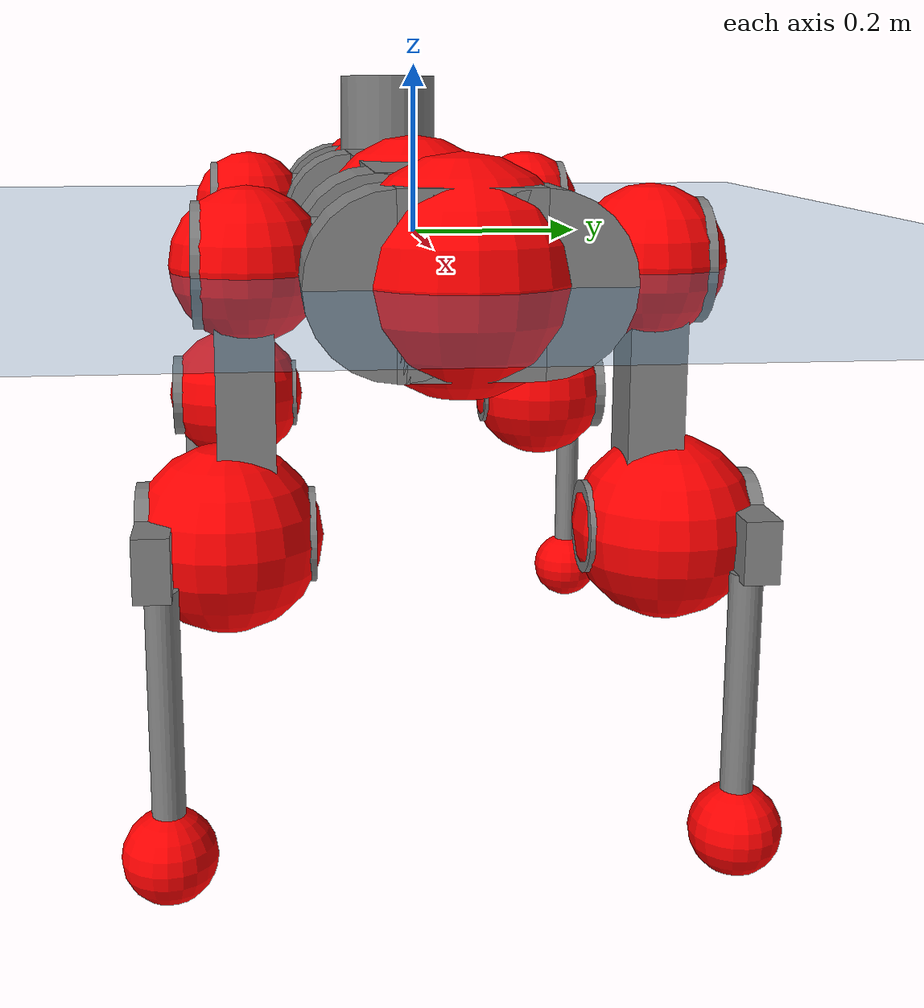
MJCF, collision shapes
<mujoco model="anymal_c">
  <compiler angle="radian" assetdir="assets" balanceinertia="true" inertiafromgeom="false"/>

  <option timestep="0.005" density="1.2" viscosity="2e-05"/>

  <size nkey="1"/>

  <visual>
    <quality shadowsize="8192"/>
    <map shadowclip="0.5"/>
  </visual>

  <default>
    <default class="/">
      <material specular="0" shininess="0.25"/>
      <geom contype="0" conaffinity="0" group="1" solref="-1000 -80"/>
      <site size="0.01 0.005 0.005" group="5"/>
      <general forcelimited="true" forcerange="-80 80" biastype="affine" gainprm="80" biasprm="0 -80 -2"/>
      <default class="anymal_c">
        <joint armature="0.01" damping="0.01" frictionloss="0.1"/>
        <default class="visual">
          <geom type="mesh" group="2"/>
          <default class="visual_zflip"/>
        </default>
        <default class="collision">
          <geom type="cylinder" group="3"/>
          <default class="foot">
            <geom size="0.03 0 0" type="sphere" condim="6" priority="1" friction="0.8 0.02 0.01" solimp="0.015 1 0.03"/>
          </default>
        </default>
      </default>
      <default class="reward_collision_sphere">
        <geom group="5" rgba="1 0 0 1"/>
      </default>
    </default>
  </default>

  <asset>
    <texture type="skybox" colorspace="auto" name="//unnamed_texture_0" builtin="gradient" rgb1="0.95 0.95 0.95" rgb2="0.95 0.95 0.95" width="100" height="600"/>
    <texture type="2d" colorspace="auto" name="texplane" builtin="checker" rgb1="0.345 0.575 0.748" rgb2="0.345 0.575 0.748" markrgb="1 1 1" width="512" height="512"/>
    <texture type="2d" colorspace="linear" name="base" file="base.png"/>
    <texture type="2d" colorspace="linear" name="top_shell" file="top_shell.png"/>
    <texture type="2d" colorspace="linear" name="bottom_shell" file="bottom_shell.png"/>
    <texture type="2d" colorspace="linear" name="remote" file="remote.png"/>
    <texture type="2d" colorspace="linear" name="hatch" file="hatch.png"/>
    <texture type="2d" colorspace="linear" name="handle" file="handle.png"/>
    <texture type="2d" colorspace="linear" name="face" file="face.png"/>
    <texture type="2d" colorspace="linear" name="battery" file="battery.png"/>
    <texture type="2d" colorspace="linear" name="lidar_cage" file="lidar_cage.png"/>
    <texture type="2d" colorspace="linear" name="depth_camera" file="depth_camera.png"/>
    <texture type="2d" colorspace="linear" name="wide_angle_camera" file="wide_angle_camera.png"/>
    <texture type="2d" colorspace="linear" name="lidar" file="lidar.png"/>
    <texture type="2d" colorspace="linear" name="drive" file="drive.png"/>
    <texture type="2d" colorspace="linear" name="hip_l" file="hip_l.png"/>
    <texture type="2d" colorspace="linear" name="shank_l" file="shank_l.png"/>
    <texture type="2d" colorspace="linear" name="foot" file="foot.png"/>
    <texture type="2d" colorspace="linear" name="thigh" file="thigh.png"/>
    <texture type="2d" colorspace="linear" name="shank_r" file="shank_r.png"/>
    <texture type="2d" colorspace="linear" name="hip_r" file="hip_r.png"/>
    <material name="MatPlane" class="/" texture="texplane" texuniform="true" texrepeat="2 2" specular="0.9" shininess="0.5"/>
    <material name="black_plastic" class="/" rgba="0.007 0.007 0.007 1"/>
    <material name="green" class="/" rgba="0.052 0.178 0.033 1"/>
    <material name="red" class="/" rgba="0.178 0.006 0.005 1"/>
    <material name="yellow" class="/" rgba="0.178 0.119 0.006 1"/>
    <material name="lwl" class="/" rgba="0.8 0.8 0.8 1"/>
    <material name="base" class="/" texture="base"/>
    <material name="top_shell" class="/" texture="top_shell"/>
    <material name="bottom_shell" class="/" texture="bottom_shell"/>
    <material name="hip_l" class="/" texture="hip_l"/>
    <material name="thigh" class="/" texture="thigh"/>
    <material name="shank_l" class="/" texture="shank_l"/>
    <material name="foot" class="/" texture="foot"/>
    <material name="hip_r" class="/" texture="hip_r"/>
    <material name="shank" class="/" texture="shank_r"/>
    <material name="hatch" class="/" texture="hatch"/>
    <material name="remote" class="/" texture="remote"/>
    <material name="handle" class="/" texture="handle"/>
    <material name="face" class="/" texture="face"/>
    <material name="depth_camera" class="/" texture="depth_camera"/>
    <material name="wide_angle_camera" class="/" texture="wide_angle_camera"/>
    <material name="battery" class="/" texture="battery"/>
    <material name="lidar_cage" class="/" texture="lidar_cage"/>
    <material name="lidar" class="/" texture="lidar"/>
    <material name="drive" class="/" texture="drive"/>
    <mesh name="base_0" class="/" file="base_0.obj"/>
    <mesh name="base_1" class="/" file="base_1.obj"/>
    <mesh name="base_2" class="/" file="base_2.obj"/>
    <mesh name="base_3" class="/" file="base_3.obj"/>
    <mesh name="base_4" class="/" file="base_4.obj"/>
    <mesh name="base_5" class="/" file="base_5.obj"/>
    <mesh name="top_shell" class="/" file="top_shell.obj"/>
    <mesh name="bottom_shell" class="/" file="bottom_shell.obj"/>
    <mesh name="remote" class="/" file="remote.obj"/>
    <mesh name="handle" class="/" file="handle.obj"/>
    <mesh name="face" class="/" file="face.obj"/>
    <mesh name="wide_angle_camera" class="/" file="wide_angle_camera.obj"/>
    <mesh name="depth_camera" class="/" file="depth_camera.obj"/>
    <mesh name="battery" class="/" file="battery.obj"/>
    <mesh name="lidar_cage" class="/" file="lidar_cage.obj"/>
    <mesh name="lidar" class="/" file="lidar.obj"/>
    <mesh name="drive" class="/" file="drive.obj"/>
    <mesh name="hip_l" class="/" file="hip_l.obj"/>
    <mesh name="thigh" class="/" file="thigh.obj"/>
    <mesh name="shank_l" class="/" file="shank_l.obj"/>
    <mesh name="foot" class="/" file="foot.obj"/>
    <mesh name="hip_r" class="/" file="hip_r.obj"/>
    <mesh name="hatch" class="/" file="hatch.obj"/>
    <mesh name="shank_r" class="/" file="shank_r.obj"/>
  </asset>

  <worldbody>
    <geom name="floor" class="/" size="100 100 0.125" type="plane" group="0" material="MatPlane"/>
    <light name="toplight_shadow" class="/" pos="0 0 5" dir="0.0990148 0.0990148 -0.990148" type="directional" ambient="0.04 0.04 0.04" diffuse="0.55 0.55 0.55" specular="0.12 0.12 0.12"/>
    <light name="toplight_fill" class="/" pos="0 0 5" dir="0.0990148 0.0990148 -0.990148" type="directional" castshadow="false" ambient="0.04 0.04 0.04" diffuse="0.3 0.3 0.3" specular="0.08 0.08 0.08"/>
    <body name="trunk" childclass="anymal_c" pos="-7.09151e-05 -6.06108e-05 0.000513237" quat="1 -0.000100759 5.86016e-05 8.78511e-05">
      <inertial pos="0.00216075 0.000875074 0.0472227" quat="0.500248 0.499806 0.499952 0.499994" mass="17.8173" diaginertia="0.690007 0.433182 0.191863"/>
      <joint name="//unnamed_joint_0" type="free" armature="0" damping="0" frictionloss="0"/>
      <geom name="//unnamed_geom_1" class="visual" material="green" mesh="base_0"/>
      <geom name="//unnamed_geom_2" class="visual" material="yellow" mesh="base_1"/>
      <geom name="//unnamed_geom_3" class="visual" material="red" mesh="base_2"/>
      <geom name="//unnamed_geom_4" class="visual" material="black_plastic" mesh="base_3"/>
      <geom name="//unnamed_geom_5" class="visual" material="lwl" mesh="base_4"/>
      <geom name="//unnamed_geom_6" class="visual" material="base" mesh="base_5"/>
      <geom name="trunk_1" class="collision" size="0.281582 0.0679681 0.0873875" type="box"/>
      <geom name="trunk_2" class="collision" size="0.0873875 0.0703955" pos="0.220179 0.0649517 0" quat="0.707107 0 0.707107 0"/>
      <geom name="trunk_3" class="collision" size="0.0873875 0.0703955" pos="-0.220179 0.0649517 0" quat="0.707107 0 0.707107 0"/>
      <geom name="trunk_4" class="collision" size="0.0873875 0.0703955" pos="0.220179 -0.0649517 0" quat="0.707107 0 0.707107 0"/>
      <geom name="trunk_5" class="collision" size="0.0873875 0.0703955" pos="-0.220179 -0.0649517 0" quat="0.707107 0 0.707107 0"/>
      <geom name="//unnamed_geom_12" class="visual" material="top_shell" mesh="top_shell"/>
      <geom name="//unnamed_geom_13" class="visual" material="bottom_shell" mesh="bottom_shell"/>
      <geom name="//unnamed_geom_14" class="visual" material="remote" mesh="remote"/>
      <geom name="//unnamed_geom_15" class="visual" material="handle" mesh="handle"/>
      <geom name="//unnamed_geom_16" class="visual" pos="0.419606 0 0" quat="1 0 0 0" material="face" mesh="face"/>
      <geom name="trunk_6" class="collision" size="0.0534035 0.0679681 0.0873875" pos="0.475283 0 0" type="box"/>
      <geom name="//unnamed_geom_18" class="collision" size="0.0873875 0.0534035" pos="0.475283 0.0649517 0" quat="0.707107 0 0.707107 0"/>
      <geom name="//unnamed_geom_19" class="collision" size="0.0873875 0.0534035" pos="0.475283 -0.0649517 0" quat="0.707107 0 0.707107 0"/>
      <geom name="//unnamed_geom_20" class="visual" pos="0.467335 0 -0.0281024" quat="0.965926 0 0.258819 0" material="depth_camera" mesh="depth_camera"/>
      <geom name="//unnamed_geom_21" class="visual" pos="0.519319 0 0.0145616" material="wide_angle_camera" mesh="wide_angle_camera"/>
      <geom name="//unnamed_geom_22" class="visual_zflip" pos="-0.419606 0 0" quat="0 0 0 1" material="face" mesh="face"/>
      <geom name="trunk_7" class="collision" size="0.0534035 0.0679681 0.0873875" pos="-0.475283 0 0" quat="0 0 0 1" type="box"/>
      <geom name="//unnamed_geom_24" class="collision" size="0.0873875 0.0534035" pos="-0.475283 -0.0649517 0" quat="0 -0.707107 0 0.707107"/>
      <geom name="//unnamed_geom_25" class="collision" size="0.0873875 0.0534035" pos="-0.475283 0.0649517 0" quat="0 -0.707107 0 0.707107"/>
      <geom name="//unnamed_geom_26" class="visual" pos="-0.467335 0 -0.0281024" quat="0 -0.258819 0 0.965926" material="depth_camera" mesh="depth_camera"/>
      <geom name="//unnamed_geom_27" class="visual_zflip" pos="-0.519319 0 0.0145616" quat="0 0 0 1" material="wide_angle_camera" mesh="wide_angle_camera"/>
      <geom name="//unnamed_geom_28" class="visual" material="battery" mesh="battery"/>
      <geom name="//unnamed_geom_29" class="visual" pos="0 0.0698361 0.0285584" quat="0.683013 -0.183013 0.183013 0.683013" material="depth_camera" mesh="depth_camera"/>
      <geom name="//unnamed_geom_30" class="visual" pos="0 -0.0698361 0.0285584" quat="0.683013 0.183013 0.183013 -0.683013" material="depth_camera" mesh="depth_camera"/>
      <geom name="//unnamed_geom_31" class="visual" pos="-0.368484 0 0.0714948" quat="1 0 0 0" material="lidar_cage" mesh="lidar_cage"/>
      <geom name="trunk_8" class="collision" size="0.0679681 0.0582583" pos="-0.368484 0 0.129858"/>
      <geom name="//unnamed_geom_33" class="visual" pos="-0.368484 -3.31732e-05 0.138321" quat="0.707107 0 0 -0.707107" material="lidar" mesh="lidar"/>
      <geom name="//unnamed_geom_34" class="visual" pos="0.303594 0.0965155 -7.73451e-10" quat="0.258819 0.965926 0 0" material="drive" mesh="drive"/>
      <geom name="//unnamed_geom_35" class="visual" pos="0.303594 -0.0965155 7.73451e-10" quat="0.258819 -0.965926 0 0" material="drive" mesh="drive"/>
      <geom name="//unnamed_geom_36" class="visual" pos="-0.303594 0.0965155 7.73451e-10" quat="0 0 0.965926 -0.258819" material="drive" mesh="drive"/>
      <geom name="//unnamed_geom_37" class="visual" pos="-0.303594 -0.0965155 -7.73451e-10" quat="0 0 -0.965926 -0.258819" material="drive" mesh="drive"/>
      <geom name="//unnamed_geom_38" class="visual" pos="0.117429 0 0.0710084" quat="1 0 0 0" material="hatch" mesh="hatch"/>
      <geom name="//unnamed_geom_39" class="reward_collision_sphere" size="0.116517"/>
      <geom name="//unnamed_geom_40" class="reward_collision_sphere" size="0.116517" pos="0.455543 0 0"/>
      <geom name="//unnamed_geom_41" class="reward_collision_sphere" size="0.116517" pos="-0.455543 0 0"/>
      <site name="imu" pos="0.249566 0.0125116 0.0419677" size="0.00970972"/>
      <camera name="track" pos="0 -1.85576 0" quat="0.707107 0.707107 0 0" mode="trackcom"/>
      <camera name="ego_camera" pos="0.455543 0 -0.0389087" quat="-0.5 -0.5 0.5 0.5"/>
      <body name="LF_HIP" pos="0.304087 0.0972392 0.000775061" quat="0.258894 0.965906 3.11615e-05 6.64536e-06">
        <inertial pos="0.0570851 -0.0137306 -0.00695675" quat="-0.127362 0.711054 -0.133429 0.678512" mass="2.54685" diaginertia="0.00624137 0.00342877 0.00283659"/>
        <joint name="LF_HAA" pos="0 0 0" axis="0.999998 -0.000383267 0.00194749" range="-0.703001 0.488189" armature="0.00930613" damping="0.005208" frictionloss="0.0962549"/>
        <geom name="//unnamed_geom_42" class="visual" pos="0 -4.54986e-05 7.47311e-06" quat="0.258819 -0.965926 0 0" material="hip_l" mesh="hip_l"/>
        <geom name="//unnamed_geom_43" class="visual" pos="0.0606379 -0.0723799 -0.0421202" quat="0.183013 -0.683013 0.683013 0.183013" material="drive" mesh="drive"/>
        <geom name="//unnamed_geom_44" class="collision" size="0.0485486 0.0679681" pos="0.0606379 -0.0110973 -0.00671662" quat="-0.353553 -0.612372 0.612372 -0.353553"/>
        <body name="LF_THIGH" pos="0.0608492 -0.0673898 -0.0414578" quat="0.183017 -0.68294 0.683052 0.183134">
          <inertial pos="0.0315826 -8.83913e-05 -0.237974" quat="0.99322 -0.00650305 -0.0807844 0.0833392" mass="2.79707" diaginertia="0.0322969 0.0203742 0.00355827"/>
          <joint name="LF_HFE" pos="0 0 0" axis="0.999999 -0.00158384 -0.000464857" stiffness="0.00694305" range="-3.13054 3.12149" armature="0.00984255" damping="0.0079071" frictionloss="0.0980969"/>
          <geom name="//unnamed_geom_45" class="visual" pos="0.00167997 2.64724e-06 0" quat="0.707107 0 0 -0.707107" material="thigh" mesh="thigh"/>
          <geom name="//unnamed_geom_46" class="collision" size="0.0631132 0.0388389" pos="0.0404927 0 0" quat="0.5 0.5 -0.5 -0.5"/>
          <geom name="//unnamed_geom_47" class="collision" size="0.0364115 0.0291292 0.137212" pos="0.0303695 0 -0.137459" quat="0.707107 0 0 -0.707107" type="box"/>
          <geom name="//unnamed_geom_48" class="visual" pos="0.101536 0 -0.277225" quat="1 0 0 0" material="drive" mesh="drive"/>
          <geom name="//unnamed_geom_49" class="collision" size="0.0485486 0.0679681" pos="0.0306732 0 -0.277225" quat="0.707107 0 0.707107 0"/>
          <geom name="//unnamed_geom_50" class="reward_collision_sphere" size="0.0776778" pos="0.025308 0 0"/>
          <body name="LF_SHANK" pos="0.101802 -0.00105707 -0.277929" quat="1 -3.42759e-05 -0.000467368 -0.000137024">
            <inertial pos="0.00565961 -0.056864 -0.0783794" quat="0.992889 -0.11632 -0.000994923 -0.0253188" mass="0.544774" diaginertia="0.0108187 0.00630857 0.000977333"/>
            <joint name="LF_KFE" pos="0 0 0" axis="0.999988 -0.00461397 -0.00136441" stiffness="0.000295128" range="-3.13223 3.12898" armature="0.00997837" damping="0.00914434" frictionloss="0.0995126"/>
            <geom name="//unnamed_geom_51" class="visual" pos="0.000547803 0.00292091 0" quat="0.707107 0 0 -0.707107" material="shank_l" mesh="shank_l"/>
            <geom name="LF_kfe_act" class="collision" size="0.0582583 0.0194194" pos="0.0202464 0 0" quat="0.5 0.5 -0.5 -0.5"/>
            <geom name="//unnamed_geom_53" class="collision" size="0.0558299 0.0327703 0.0184485" pos="0.0202464 -0.0533522 0" quat="0.5 0.5 -0.5 -0.5" type="box"/>
            <geom name="//unnamed_geom_54" class="visual" pos="0.0132106 -0.0806658 -0.32875" quat="0.382683 0 0 -0.92388" material="foot" mesh="foot"/>
            <geom name="LF_calf" class="collision" size="0.016992 0.137152" pos="0.0132108 -0.0816071 -0.164375" quat="0.707107 0 0 -0.707107"/>
            <geom name="LF_foot" class="foot" size="0.0304988" pos="0.0132108 -0.0816071 -0.306863" quat="0.707107 0 0 -0.707107"/>
            <geom name="//unnamed_geom_57" class="reward_collision_sphere" size="0.0970972" pos="-0.0506159 0 0"/>
            <geom name="//unnamed_geom_58" class="reward_collision_sphere" size="0.0485486" pos="0.0132108 -0.0816071 -0.306863"/>
            <site name="LF_foot" class="foot" pos="0.0132108 -0.0816071 -0.306863" quat="0.707107 0 0 -0.707107" size="0.00970972"/>
          </body>
        </body>
      </body>
      <body name="RF_HIP" pos="0.303506 -0.0962222 0.000366477" quat="0.258805 -0.965929 -0.000128239 2.53353e-05">
        <inertial pos="0.0573233 0.0151054 -0.00867427" quat="0.134577 0.679465 0.12853 0.709715" mass="2.51997" diaginertia="0.0061901 0.00339787 0.00286683"/>
        <joint name="RF_HAA" pos="0 0 0" axis="1 -0.000531074 0.000676392" range="-0.497307 0.706548" armature="0.00971326" damping="0.00963003" frictionloss="0.100907"/>
        <geom name="//unnamed_geom_59" class="visual" pos="0 4.54982e-05 7.47309e-06" quat="0.258819 0.965926 0 0" material="hip_r" mesh="hip_r"/>
        <geom name="//unnamed_geom_60" class="visual" pos="0.0606379 0.0723799 -0.0421202" quat="0.183013 0.683013 0.683013 -0.183013" material="drive" mesh="drive"/>
        <geom name="//unnamed_geom_61" class="collision" size="0.0485486 0.0679681" pos="0.0606379 0.0110973 -0.00671662" quat="-0.353553 0.612372 0.612372 0.353553"/>
        <body name="RF_THIGH" pos="0.0623774 0.0665535 -0.0418493" quat="0.183084 0.68313 0.682813 -0.183246">
          <inertial pos="0.0309987 -0.000527913 -0.238724" quat="0.992746 -0.00453973 -0.08089 0.088835" mass="2.89625" diaginertia="0.0324077 0.0211525 0.00373196"/>
          <joint name="RF_HFE" pos="0 0 0" axis="0.999984 -0.00126002 -0.00547882" stiffness="0.00532372" range="-3.11233 3.12304" armature="0.00964473" damping="0.00727228" frictionloss="0.0957258"/>
          <geom name="//unnamed_geom_62" class="visual" pos="0.00167997 2.64724e-06 0" quat="0.707107 0 0 -0.707107" material="thigh" mesh="thigh"/>
          <geom name="//unnamed_geom_63" class="collision" size="0.0631132 0.0388389" pos="0.0404927 0 0" quat="0.5 0.5 0.5 0.5"/>
          <geom name="//unnamed_geom_64" class="collision" size="0.0364115 0.0291292 0.137212" pos="0.0303695 0 -0.137459" quat="0.707107 0 0 0.707107" type="box"/>
          <geom name="//unnamed_geom_65" class="visual" pos="0.101536 0 -0.277225" quat="1 0 0 0" material="drive" mesh="drive"/>
          <geom name="//unnamed_geom_66" class="collision" size="0.0485486 0.0679681" pos="0.0306732 0 -0.277225" quat="0.707107 0 0.707107 0"/>
          <geom name="//unnamed_geom_67" class="reward_collision_sphere" size="0.0776778" pos="0.025308 0 0"/>
          <body name="RF_SHANK" pos="0.102113 0.000286468 -0.277843" quat="1 0.000125028 0.000220152 1.16223e-05">
            <inertial pos="0.00629912 0.0565692 -0.0769335" quat="0.992883 0.116354 -0.00131082 0.0253822" mass="0.528125" diaginertia="0.0106942 0.00637899 0.000978229"/>
            <joint name="RF_KFE" pos="0 0 0" axis="0.999947 0.00289486 -0.00992846" range="-3.1402 3.13296" armature="0.00971126" damping="0.010642" frictionloss="0.0896659"/>
            <geom name="//unnamed_geom_68" class="visual" pos="0.0005478 -0.00292091 0" quat="0.707107 0 0 0.707107" material="shank" mesh="shank_r"/>
            <geom name="RF_kfe_act" class="collision" size="0.0582583 0.0194194" pos="0.0202464 0 0" quat="0.5 0.5 0.5 0.5"/>
            <geom name="//unnamed_geom_70" class="collision" size="0.0558299 0.0327703 0.0184485" pos="0.0202464 0.0533522 0" quat="0.5 0.5 0.5 0.5" type="box"/>
            <geom name="//unnamed_geom_71" class="visual" pos="0.0132109 0.0806658 -0.32875" quat="0.382683 0 0 0.92388" material="foot" mesh="foot"/>
            <geom name="RF_calf" class="collision" size="0.016992 0.137152" pos="0.0132108 0.0816071 -0.164375" quat="0.707107 0 0 0.707107"/>
            <geom name="RF_foot" class="foot" size="0.030036" pos="0.0132108 0.0816071 -0.306863" quat="0.707107 0 0 0.707107"/>
            <geom name="//unnamed_geom_74" class="reward_collision_sphere" size="0.0970972" pos="-0.0506159 0 0"/>
            <geom name="//unnamed_geom_75" class="reward_collision_sphere" size="0.0485486" pos="0.0132108 0.0816071 -0.306863"/>
            <site name="RF_foot" class="foot" pos="0.0132108 0.0816071 -0.306863" quat="0.707107 0 0 0.707107" size="0.00970972"/>
          </body>
        </body>
      </body>
      <body name="LH_HIP" pos="-0.303601 0.0968421 0.000347901" quat="1.02708e-05 -1.05022e-05 0.965905 -0.258899">
        <inertial pos="0.0584396 0.0136532 -0.007601" quat="0.142762 0.676135 0.125671 0.711805" mass="2.49479" diaginertia="0.00619898 0.00335452 0.00289787"/>
        <joint name="LH_HAA" pos="0 0 0" axis="0.999992 -0.00397179 -0.000384042" range="-0.48675 0.740861" armature="0.00965665" damping="0.0126626" frictionloss="0.0924802"/>
        <geom name="//unnamed_geom_76" class="visual" pos="0 4.54982e-05 7.47309e-06" quat="-0.258819 -0.965926 0 0" material="hip_r" mesh="hip_r"/>
        <geom name="//unnamed_geom_77" class="visual" pos="0.0606379 0.0723799 -0.0421202" quat="0.183013 0.683013 0.683013 -0.183013" material="drive" mesh="drive"/>
        <geom name="//unnamed_geom_78" class="collision" size="0.0485486 0.0679681" pos="0.0606379 0.0110973 -0.00671662" quat="-0.353553 0.612372 0.612372 0.353553"/>
        <body name="LH_THIGH" pos="0.0602683 0.0675301 -0.0414257" quat="0.183222 0.683019 0.682893 -0.183227">
          <inertial pos="0.031649 0.00043717 -0.23887" quat="0.992658 -0.00511133 -0.0837009 0.0871715" mass="2.84055" diaginertia="0.0322995 0.021028 0.00363967"/>
          <joint name="LH_HFE" pos="0 0 0" axis="1 -0.000106317 -0.000126861" range="-3.14316 3.1419" armature="0.0096819" damping="0.00552862" frictionloss="0.0976786"/>
          <geom name="//unnamed_geom_79" class="visual" pos="0.00167997 2.64724e-06 0" quat="0.707107 0 0 -0.707107" material="thigh" mesh="thigh"/>
          <geom name="//unnamed_geom_80" class="collision" size="0.0631132 0.0388389" pos="0.0404927 0 0" quat="0.5 0.5 -0.5 -0.5"/>
          <geom name="//unnamed_geom_81" class="collision" size="0.0364115 0.0291292 0.137212" pos="0.0303695 0 -0.137459" quat="0.707107 0 0 -0.707107" type="box"/>
          <geom name="//unnamed_geom_82" class="visual" pos="0.101536 0 -0.277225" quat="1 0 0 0" material="drive" mesh="drive"/>
          <geom name="//unnamed_geom_83" class="collision" size="0.0485486 0.0679681" pos="0.0306732 0 -0.277225" quat="0.707107 0 0.707107 0"/>
          <geom name="//unnamed_geom_84" class="reward_collision_sphere" size="0.0776778" pos="0.025308 0 0"/>
          <body name="LH_SHANK" pos="0.101717 -0.000612481 -0.277599" quat="1 9.64435e-05 -4.8785e-05 -7.81028e-05">
            <inertial pos="0.00534829 0.0572299 -0.0777796" quat="0.992903 0.116152 -0.00103846 0.0255386" mass="0.546593" diaginertia="0.0110718 0.00654925 0.00101669"/>
            <joint name="LH_KFE" pos="0 0 0" axis="0.999992 -0.000596456 0.00393828" range="-3.1414 3.10559" armature="0.00974257" damping="0.00756048" frictionloss="0.0925441"/>
            <geom name="//unnamed_geom_85" class="visual" pos="0.0005478 -0.00292091 0" quat="-0.707107 0 0 -0.707107" material="shank" mesh="shank_r"/>
            <geom name="LH_kfe_act" class="collision" size="0.0582583 0.0194194" pos="0.0202464 0 0" quat="0.5 0.5 -0.5 -0.5"/>
            <geom name="//unnamed_geom_87" class="collision" size="0.0558299 0.0327703 0.0184485" pos="0.0202464 0.0533522 0" quat="0.5 0.5 -0.5 -0.5" type="box"/>
            <geom name="//unnamed_geom_88" class="visual" pos="0.0132109 0.0806658 -0.32875" quat="-0.382683 0 0 -0.92388" material="foot" mesh="foot"/>
            <geom name="LH_calf" class="collision" size="0.016992 0.137152" pos="0.0132108 0.0816071 -0.164375" quat="0.707107 0 0 -0.707107"/>
            <geom name="LH_foot" class="foot" size="0.0292102" pos="0.0132108 0.0816071 -0.306863" quat="0.707107 0 0 -0.707107"/>
            <geom name="//unnamed_geom_91" class="reward_collision_sphere" size="0.0970972" pos="-0.0506159 0 0"/>
            <geom name="//unnamed_geom_92" class="reward_collision_sphere" size="0.0485486" pos="0.0132108 0.0816071 -0.306863"/>
            <site name="LH_foot" class="foot" pos="0.0132108 0.0816071 -0.306863" quat="0.707107 0 0 -0.707107" size="0.00970972"/>
          </body>
        </body>
      </body>
      <body name="RH_HIP" pos="-0.303745 -0.0968448 0.000658785" quat="8.54704e-05 -0.000116163 -0.965983 -0.258605">
        <inertial pos="0.0577222 -0.0152331 -0.00736166" quat="-0.120838 0.711898 -0.135824 0.678345" mass="2.56801" diaginertia="0.00621839 0.00345443 0.00288844"/>
        <joint name="RH_HAA" pos="0 0 0" axis="0.999997 0.00193914 -0.00118077" stiffness="0.00168661" range="-0.73063 0.49377" armature="0.00945976" damping="0.00861393" frictionloss="0.0931289"/>
        <geom name="//unnamed_geom_93" class="visual" pos="0 -4.54986e-05 7.47311e-06" quat="-0.258819 0.965926 0 0" material="hip_l" mesh="hip_l"/>
        <geom name="//unnamed_geom_94" class="visual" pos="0.0606379 -0.0723799 -0.0421202" quat="-0.183013 0.683013 -0.683013 -0.183013" material="drive" mesh="drive"/>
        <geom name="//unnamed_geom_95" class="collision" size="0.0485486 0.0679681" pos="0.0606379 -0.0110973 -0.00671662" quat="0.353553 0.612372 -0.612372 0.353553"/>
        <body name="RH_THIGH" pos="0.0601037 -0.067357 -0.0422574" quat="-0.183095 0.683063 -0.682926 -0.183066">
          <inertial pos="0.0313575 0.00152625 -0.239737" quat="0.993146 -0.004642 -0.0809748 0.0841629" mass="2.75906" diaginertia="0.0316192 0.0201934 0.00356492"/>
          <joint name="RH_HFE" pos="0 0 0" axis="0.999993 -0.00352009 0.000894874" range="-3.15639 3.12852" armature="0.0105179" damping="0.00789853" frictionloss="0.0959173"/>
          <geom name="//unnamed_geom_96" class="visual" pos="0.00167997 2.64724e-06 0" quat="0.707107 0 0 -0.707107" material="thigh" mesh="thigh"/>
          <geom name="//unnamed_geom_97" class="collision" size="0.0631132 0.0388389" pos="0.0404927 0 0" quat="0.5 0.5 0.5 0.5"/>
          <geom name="//unnamed_geom_98" class="collision" size="0.0364115 0.0291292 0.137212" pos="0.0303695 0 -0.137459" quat="0.707107 0 0 0.707107" type="box"/>
          <geom name="//unnamed_geom_99" class="visual" pos="0.101536 0 -0.277225" quat="1 0 0 0" material="drive" mesh="drive"/>
          <geom name="//unnamed_geom_100" class="collision" size="0.0485486 0.0679681" pos="0.0306732 0 -0.277225" quat="0.707107 0 0.707107 0"/>
          <geom name="//unnamed_geom_101" class="reward_collision_sphere" size="0.0776778" pos="0.025308 0 0"/>
          <body name="RH_SHANK" pos="0.101721 0.000742528 -0.277849" quat="1 -8.17361e-05 -5.34748e-05 8.56823e-05">
            <inertial pos="0.00467173 -0.0569018 -0.0783794" quat="0.993114 -0.115488 -0.001241 -0.0196389" mass="0.540335" diaginertia="0.0110006 0.00644627 0.0010062"/>
            <joint name="RH_KFE" pos="0 0 0" axis="0.999998 -0.00123538 -0.00147659" range="-3.12316 3.14557" armature="0.00983914" damping="0.00805858" frictionloss="0.0995509"/>
            <geom name="//unnamed_geom_102" class="visual" pos="0.000547803 0.00292091 0" quat="0.707107 0 0 -0.707107" material="shank_l" mesh="shank_l"/>
            <geom name="RH_kfe_act" class="collision" size="0.0582583 0.0194194" pos="0.0202464 0 0" quat="0.5 0.5 0.5 0.5"/>
            <geom name="//unnamed_geom_104" class="collision" size="0.0558299 0.0327703 0.0184485" pos="0.0202464 -0.0533522 0" quat="0.5 0.5 0.5 0.5" type="box"/>
            <geom name="//unnamed_geom_105" class="visual" pos="0.0132106 -0.0806658 -0.32875" quat="0.382683 0 0 -0.92388" material="foot" mesh="foot"/>
            <geom name="RH_calf" class="collision" size="0.016992 0.137152" pos="0.0132108 -0.0816071 -0.164375" quat="0.707107 0 0 0.707107"/>
            <geom name="RH_foot" class="foot" size="0.0254789" pos="0.0132108 -0.0816071 -0.306863" quat="0.707107 0 0 0.707107"/>
            <geom name="//unnamed_geom_108" class="reward_collision_sphere" size="0.0970972" pos="-0.0506159 0 0"/>
            <geom name="//unnamed_geom_109" class="reward_collision_sphere" size="0.0485486" pos="0.0132108 -0.0816071 -0.306863"/>
            <site name="RH_foot" class="foot" pos="0.0132108 -0.0816071 -0.306863" quat="0.707107 0 0 0.707107" size="0.00970972"/>
          </body>
        </body>
      </body>
    </body>
  </worldbody>

  <contact>
    <pair class="/" geom1="floor" geom2="LF_foot" name="//unnamed_contact_0"/>
    <pair class="/" geom1="floor" geom2="RF_foot" name="//unnamed_contact_1"/>
    <pair class="/" geom1="floor" geom2="LH_foot" name="//unnamed_contact_2"/>
    <pair class="/" geom1="floor" geom2="RH_foot" name="//unnamed_contact_3"/>
  </contact>

  <actuator>
    <general name="LF_HAA" class="/" joint="LF_HAA" forcerange="-81.199 81.199" gainprm="79.6897" biasprm="0 -79.6897 -1.88995"/>
    <general name="LF_HFE" class="/" joint="LF_HFE" forcerange="-73.4707 73.4707" gainprm="79.6897" biasprm="0 -79.6897 -1.88995"/>
    <general name="LF_KFE" class="/" joint="LF_KFE" forcerange="-78.3741 78.3741" gainprm="79.6897" biasprm="0 -79.6897 -1.88995"/>
    <general name="RF_HAA" class="/" joint="RF_HAA" forcerange="-78.1718 78.1718" gainprm="79.6897" biasprm="0 -79.6897 -1.88995"/>
    <general name="RF_HFE" class="/" joint="RF_HFE" forcerange="-76.5278 76.5278" gainprm="79.6897" biasprm="0 -79.6897 -1.88995"/>
    <general name="RF_KFE" class="/" joint="RF_KFE" forcerange="-80.3693 80.3693" gainprm="79.6897" biasprm="0 -79.6897 -1.88995"/>
    <general name="LH_HAA" class="/" joint="LH_HAA" forcerange="-76.1872 76.1872" gainprm="79.6897" biasprm="0 -79.6897 -1.88995"/>
    <general name="LH_HFE" class="/" joint="LH_HFE" forcerange="-78.214 78.214" gainprm="79.6897" biasprm="0 -79.6897 -1.88995"/>
    <general name="LH_KFE" class="/" joint="LH_KFE" forcerange="-81.1677 81.1677" gainprm="79.6897" biasprm="0 -79.6897 -1.88995"/>
    <general name="RH_HAA" class="/" joint="RH_HAA" forcerange="-74.1565 74.1565" gainprm="79.6897" biasprm="0 -79.6897 -1.88995"/>
    <general name="RH_HFE" class="/" joint="RH_HFE" forcerange="-76.5706 76.5706" gainprm="79.6897" biasprm="0 -79.6897 -1.88995"/>
    <general name="RH_KFE" class="/" joint="RH_KFE" forcerange="-76.7234 76.7234" gainprm="79.6897" biasprm="0 -79.6897 -1.88995"/>
  </actuator>

  <sensor>
    <gyro site="imu" name="imu_angular_velocity"/>
    <velocimeter site="imu" name="imu_linear_velocity"/>
    <framelinvel objtype="site" objname="LF_foot" name="LF_foot_global_linear_velocity"/>
    <framelinvel objtype="site" objname="RF_foot" name="RF_foot_global_linear_velocity"/>
    <framelinvel objtype="site" objname="LH_foot" name="LH_foot_global_linear_velocity"/>
    <framelinvel objtype="site" objname="RH_foot" name="RH_foot_global_linear_velocity"/>
  </sensor>

  <keyframe>
    <key name="home" qpos="0 0 0.55 1 0 0 0 0 0.4 -0.8 0 -0.4 0.8 0 -0.4 0.8 0 0.4 -0.8"/>
  </keyframe>
</mujoco>
